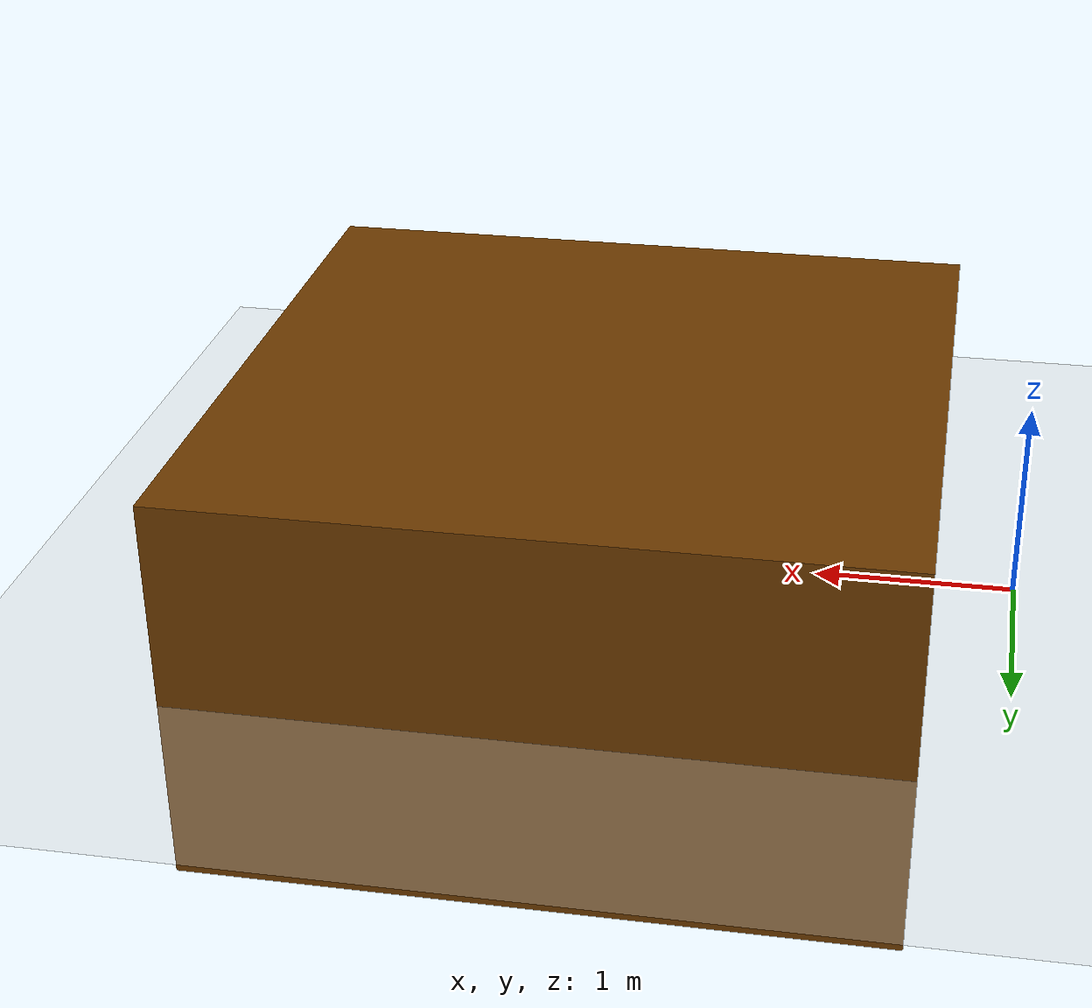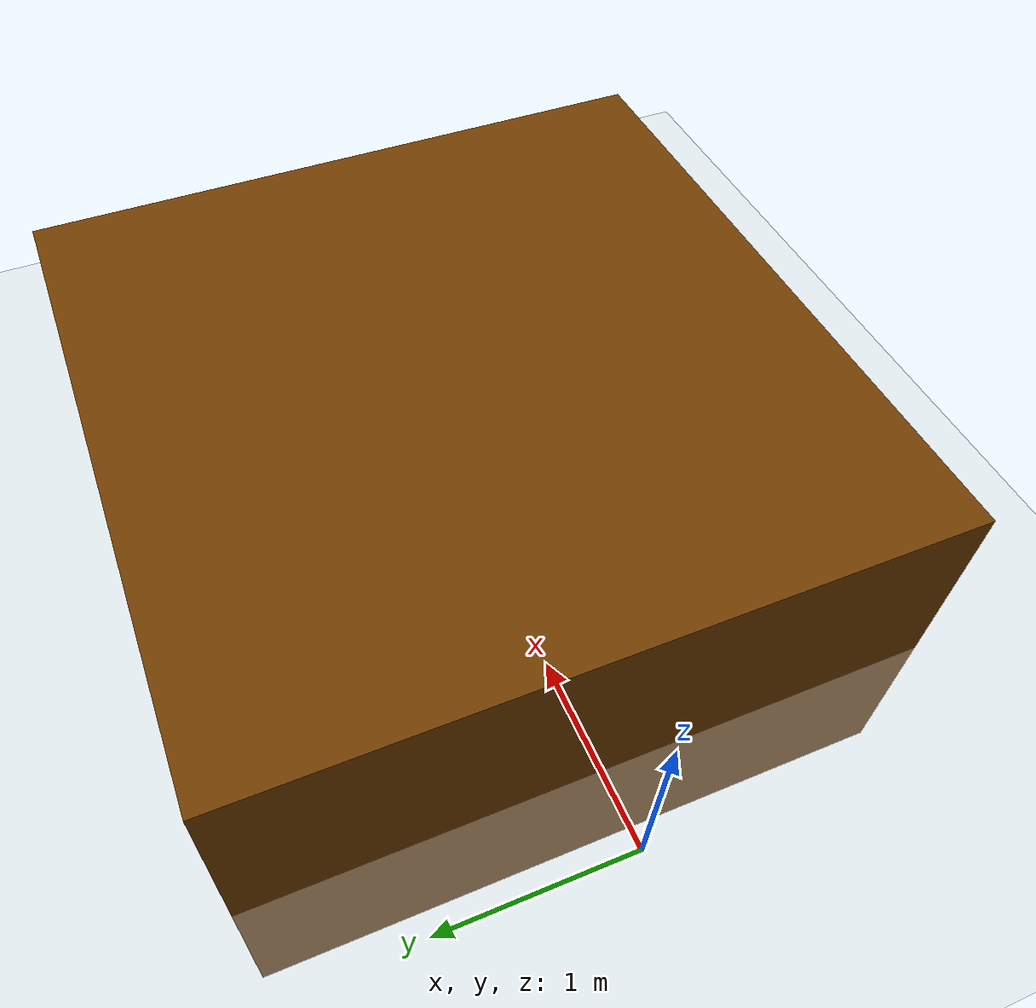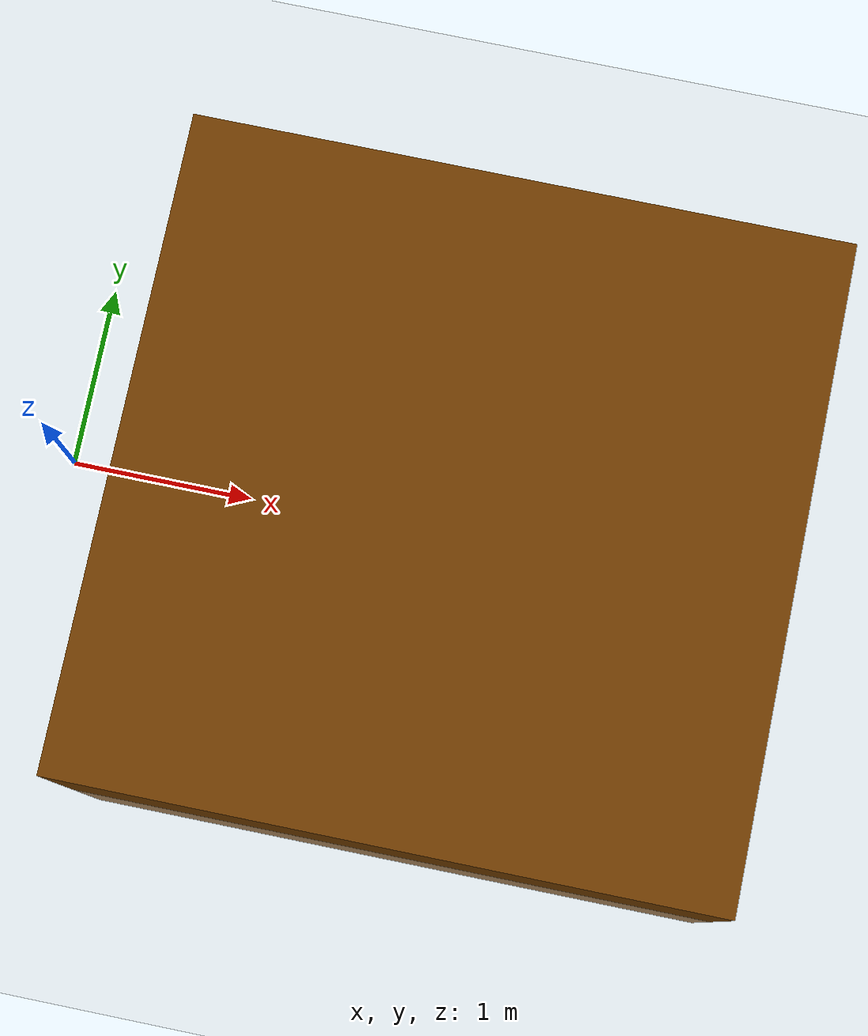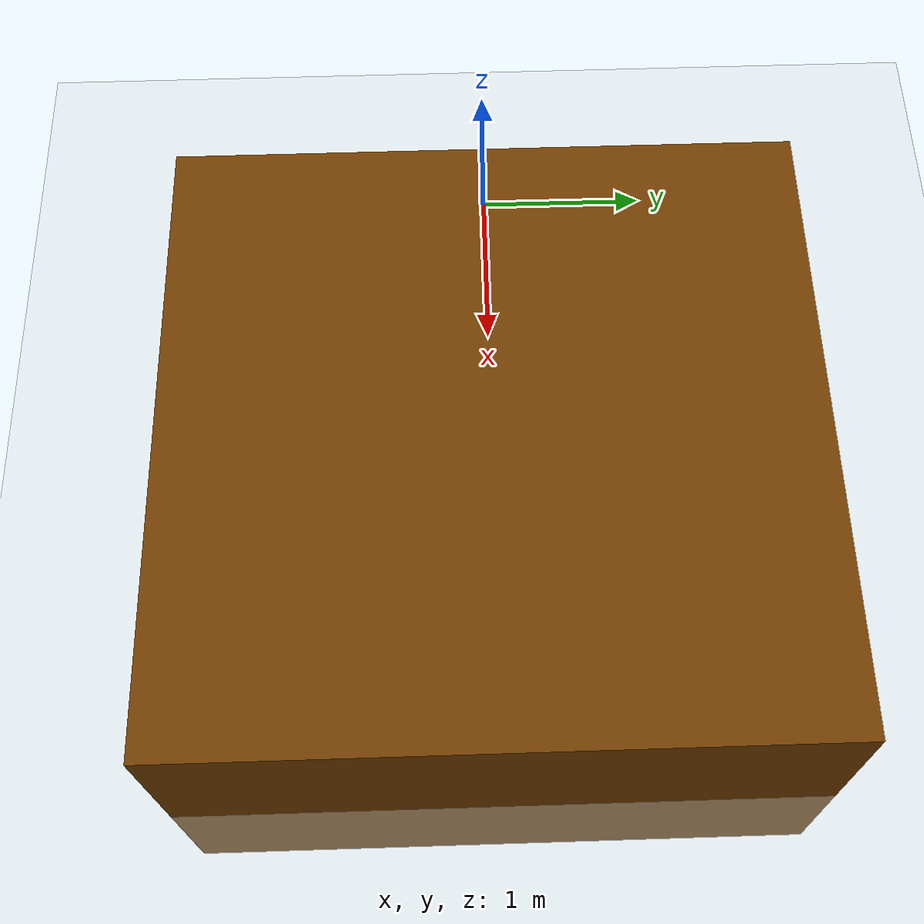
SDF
<sdf version="1.6">
 <world name="default">
  <physics name="default_physics" default="0" type="ode">
   <max_step_size>0.0001</max_step_size>
   <real_time_factor>1</real_time_factor>
   <real_time_update_rate>10000</real_time_update_rate>
   <ode>
    <solver>
     <type>quick</type>
     <iters>80</iters>
     <sor>1.3</sor>
     <use_dynamic_moi_rescaling>0</use_dynamic_moi_rescaling>
    </solver>
    <constraints>
     <cfm>0</cfm>
     <erp>0.2</erp>
     <contact_max_correcting_vel>0.1</contact_max_correcting_vel>
     <contact_surface_layer>0.0001</contact_surface_layer>
    </constraints>
   </ode>
  </physics>
  <scene>
   <sky><clouds><speed>12</speed></clouds></sky>
   <ambient>0.4 0.4 0.4 1</ambient>
   <background>0.7 0.7 0.7 1</background>
   <shadows>1</shadows>
  </scene>
  <light name="sun" type="directional">
   <pose>0 0 10 0 -0 0</pose>
   <diffuse>0.8 0.8 0.8 1</diffuse>
   <specular>0.2 0.2 0.2 1</specular>
   <attenuation>
    <range>1000</range>
    <constant>0.9</constant>
    <linear>0.01</linear>
    <quadratic>0.001</quadratic>
   </attenuation>
   <direction>-0.5 0.1 -0.9</direction>
  </light>
  <model name="ground_plane">
   <static>1</static>
   <link name="link">
    <collision name="collision">
     <geometry><plane><normal>0 0 1</normal><size>100 100</size></plane></geometry>
     <surface>
      <contact><collide_bitmask>65535</collide_bitmask></contact>
      <friction><ode><mu>100</mu><mu2>50</mu2></ode></friction>
     </surface>
    </collision>
    <visual name="visual">
     <cast_shadows>0</cast_shadows>
     <geometry><plane><normal>0 0 1</normal><size>100 100</size></plane></geometry>
     <material>
      <script><uri>file://media/materials/scripts/gazebo.material</uri><name>Gazebo/Grey</name></script>
     </material>
    </visual>
   </link>
  </model>
  <model name="static_environment">
   <static>1</static>
   <link name="floor">
    <pose>2.15 0 0.045 0 -0 0</pose>
    <collision name="floor_collision">
     <geometry><box><size>3.5 3.5 2</size></box></geometry>
     <surface><friction><ode><mu>1</mu><mu2>1</mu2></ode></friction></surface>
    </collision>
    <visual name="floor_visual">
     <geometry><box><size>3.5 3.5 2</size></box></geometry>
     <material><ambient>0.2 0.2 0.2 1</ambient><diffuse>0.421 0.225 0 1</diffuse></material>
    </visual>
   </link>
  </model>
  <gravity>0 0 -9.81</gravity>
  <magnetic_field>6e-06 2.3e-05 -4.2e-05</magnetic_field>
  <atmosphere type="adiabatic"/>
  <audio><device>default</device></audio>
  <spherical_coordinates>
   <surface_model>EARTH_WGS84</surface_model>
   <latitude_deg>0</latitude_deg>
   <longitude_deg>0</longitude_deg>
   <elevation>0</elevation>
   <heading_deg>0</heading_deg>
  </spherical_coordinates>
  <light name="user_spot_light_0" type="spot">
   <pose>0.186857 0.099419 1 0 -0 0</pose>
   <diffuse>0.5 0.5 0.5 1</diffuse>
   <specular>0.1 0.1 0.1 1</specular>
   <direction>0 0 -1</direction>
   <attenuation>
    <range>20</range>
    <constant>0.5</constant>
    <linear>0.01</linear>
    <quadratic>0.001</quadratic>
   </attenuation>
   <cast_shadows>0</cast_shadows>
   <spot><inner_angle>0.6</inner_angle><outer_angle>1</outer_angle><falloff>1</falloff></spot>
  </light>
  <light name="user_point_light_0" type="point">
   <pose>-0.387606 -0.23227 1 0 -0 0</pose>
   <diffuse>0.5 0.5 0.5 1</diffuse>
   <specular>0.1 0.1 0.1 1</specular>
   <attenuation>
    <range>20</range>
    <constant>0.5</constant>
    <linear>0.01</linear>
    <quadratic>0.001</quadratic>
   </attenuation>
   <cast_shadows>0</cast_shadows>
   <direction>0 0 -1</direction>
  </light>
 </world>
</sdf>
